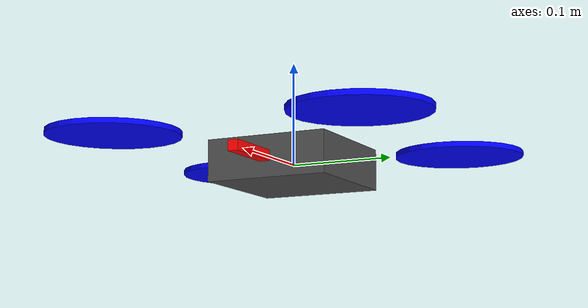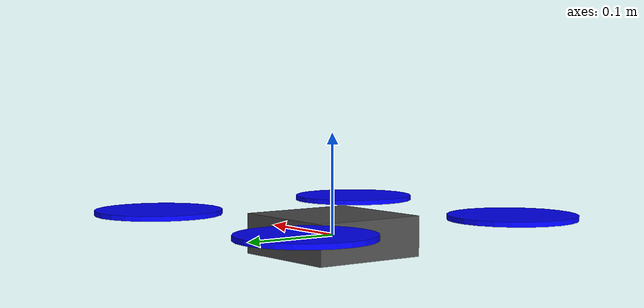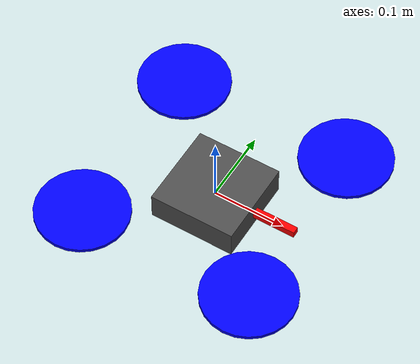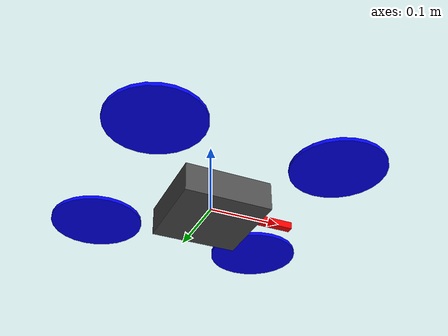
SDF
<?xml version="1.0"?>
<sdf version="1.9">
  <model name="quadrotor">
    <pose>0 0 0 0 0 0</pose>
    <self_collide>false</self_collide>
    <static>false</static>

    <!-- BASE LINK: Main body (frame + battery + electronics)         -->
    <!-- Mass: 1.0 kg (SIM007)                                       -->
    <!-- Inertia: Ixx=Iyy=0.0049, Izz=0.0069 kg*m^2                 -->
    <link name="base_link">
      <pose>0 0 0 0 0 0</pose>

      <inertial>
        <mass>1.0</mass>
        <inertia>
          <ixx>0.0049</ixx>
          <iyy>0.0049</iyy>
          <izz>0.0069</izz>
          <ixy>0</ixy>
          <ixz>0</ixz>
          <iyz>0</iyz>
        </inertia>
      </inertial>

      <collision name="body_collision">
        <geometry>
          <box><size>0.12 0.12 0.04</size></box>
        </geometry>
      </collision>

      <visual name="body_visual">
        <geometry>
          <box><size>0.12 0.12 0.04</size></box>
        </geometry>
        <material>
          <ambient>0.2 0.2 0.2 1</ambient>
          <diffuse>0.3 0.3 0.3 1</diffuse>
        </material>
      </visual>

      <!-- Front arm visual (X+ direction indicator) -->
      <visual name="arm_front_visual">
        <pose>0.06 0 0 0 0 0</pose>
        <geometry>
          <box><size>0.12 0.01 0.01</size></box>
        </geometry>
        <material>
          <ambient>0.8 0.0 0.0 1</ambient>
          <diffuse>1.0 0.0 0.0 1</diffuse>
        </material>
      </visual>

      <!-- IMU SENSOR: MPU-6050 noise model (SIM009/10) -->
      <sensor name="imu_sensor" type="imu">
        <always_on>true</always_on>
        <update_rate>250</update_rate>
        <visualize>false</visualize>
        <topic>imu</topic>
        <imu>
          <angular_velocity>
            <x>
              <noise type="gaussian">
                <mean>0</mean>
                <stddev>0.00138</stddev>
                <bias_mean>0</bias_mean>
                <bias_stddev>0.0003</bias_stddev>
              </noise>
            </x>
            <y>
              <noise type="gaussian">
                <mean>0</mean>
                <stddev>0.00138</stddev>
                <bias_mean>0</bias_mean>
                <bias_stddev>0.0003</bias_stddev>
              </noise>
            </y>
            <z>
              <noise type="gaussian">
                <mean>0</mean>
                <stddev>0.00138</stddev>
                <bias_mean>0</bias_mean>
                <bias_stddev>0.0003</bias_stddev>
              </noise>
            </z>
          </angular_velocity>
          <linear_acceleration>
            <x>
              <noise type="gaussian">
                <mean>0</mean>
                <stddev>0.062</stddev>
                <bias_mean>0</bias_mean>
                <bias_stddev>0.001</bias_stddev>
              </noise>
            </x>
            <y>
              <noise type="gaussian">
                <mean>0</mean>
                <stddev>0.062</stddev>
                <bias_mean>0</bias_mean>
                <bias_stddev>0.001</bias_stddev>
              </noise>
            </y>
            <z>
              <noise type="gaussian">
                <mean>0</mean>
                <stddev>0.062</stddev>
                <bias_mean>0</bias_mean>
                <bias_stddev>0.001</bias_stddev>
              </noise>
            </z>
          </linear_acceleration>
        </imu>
      </sensor>

      <!-- AIR PRESSURE SENSOR (barometer) -->
      <sensor name="air_pressure_sensor" type="air_pressure">
        <always_on>true</always_on>
        <update_rate>50</update_rate>
        <visualize>false</visualize>
        <topic>air_pressure</topic>
        <air_pressure>
          <reference_altitude>0</reference_altitude>
          <pressure>
            <noise type="gaussian">
              <mean>0</mean>
              <stddev>0.25</stddev>
            </noise>
          </pressure>
        </air_pressure>
      </sensor>
    </link>

    <!-- ROTOR 0: Front-Right, CCW                                    -->
    <!-- Position: (+0.1237, -0.1237, +0.02) m                       -->
    <link name="rotor_0">
      <pose>0.1237 -0.1237 0.02 0 0 0</pose>
      <inertial>
        <mass>0.005</mass>
        <inertia>
          <ixx>9.75e-7</ixx>
          <iyy>9.75e-7</iyy>
          <izz>1.95e-6</izz>
          <ixy>0</ixy><ixz>0</ixz><iyz>0</iyz>
        </inertia>
      </inertial>
      <collision name="rotor_0_collision">
        <geometry>
          <cylinder><radius>0.0635</radius><length>0.005</length></cylinder>
        </geometry>
      </collision>
      <visual name="rotor_0_visual">
        <geometry>
          <cylinder><radius>0.0635</radius><length>0.005</length></cylinder>
        </geometry>
        <material>
          <ambient>0.0 0.0 0.8 1</ambient>
          <diffuse>0.0 0.0 1.0 1</diffuse>
        </material>
      </visual>
    </link>

    <joint name="rotor_0_joint" type="revolute">
      <parent>base_link</parent>
      <child>rotor_0</child>
      <axis>
        <xyz>0 0 1</xyz>
        <limit>
          <lower>-1e16</lower>
          <upper>1e16</upper>
        </limit>
      </axis>
    </joint>

    <!-- ROTOR 1: Front-Left, CW                                     -->
    <!-- Position: (+0.1237, +0.1237, +0.02) m                       -->
    <link name="rotor_1">
      <pose>0.1237 0.1237 0.02 0 0 0</pose>
      <inertial>
        <mass>0.005</mass>
        <inertia>
          <ixx>9.75e-7</ixx>
          <iyy>9.75e-7</iyy>
          <izz>1.95e-6</izz>
          <ixy>0</ixy><ixz>0</ixz><iyz>0</iyz>
        </inertia>
      </inertial>
      <collision name="rotor_1_collision">
        <geometry>
          <cylinder><radius>0.0635</radius><length>0.005</length></cylinder>
        </geometry>
      </collision>
      <visual name="rotor_1_visual">
        <geometry>
          <cylinder><radius>0.0635</radius><length>0.005</length></cylinder>
        </geometry>
        <material>
          <ambient>0.0 0.0 0.8 1</ambient>
          <diffuse>0.0 0.0 1.0 1</diffuse>
        </material>
      </visual>
    </link>

    <joint name="rotor_1_joint" type="revolute">
      <parent>base_link</parent>
      <child>rotor_1</child>
      <axis>
        <xyz>0 0 1</xyz>
        <limit>
          <lower>-1e16</lower>
          <upper>1e16</upper>
        </limit>
      </axis>
    </joint>

    <!-- ROTOR 2: Rear-Left, CCW                                     -->
    <!-- Position: (-0.1237, +0.1237, +0.02) m                       -->
    <link name="rotor_2">
      <pose>-0.1237 0.1237 0.02 0 0 0</pose>
      <inertial>
        <mass>0.005</mass>
        <inertia>
          <ixx>9.75e-7</ixx>
          <iyy>9.75e-7</iyy>
          <izz>1.95e-6</izz>
          <ixy>0</ixy><ixz>0</ixz><iyz>0</iyz>
        </inertia>
      </inertial>
      <collision name="rotor_2_collision">
        <geometry>
          <cylinder><radius>0.0635</radius><length>0.005</length></cylinder>
        </geometry>
      </collision>
      <visual name="rotor_2_visual">
        <geometry>
          <cylinder><radius>0.0635</radius><length>0.005</length></cylinder>
        </geometry>
        <material>
          <ambient>0.0 0.0 0.8 1</ambient>
          <diffuse>0.0 0.0 1.0 1</diffuse>
        </material>
      </visual>
    </link>

    <joint name="rotor_2_joint" type="revolute">
      <parent>base_link</parent>
      <child>rotor_2</child>
      <axis>
        <xyz>0 0 1</xyz>
        <limit>
          <lower>-1e16</lower>
          <upper>1e16</upper>
        </limit>
      </axis>
    </joint>

    <!-- ROTOR 3: Rear-Right, CW                                     -->
    <!-- Position: (-0.1237, -0.1237, +0.02) m                       -->
    <link name="rotor_3">
      <pose>-0.1237 -0.1237 0.02 0 0 0</pose>
      <inertial>
        <mass>0.005</mass>
        <inertia>
          <ixx>9.75e-7</ixx>
          <iyy>9.75e-7</iyy>
          <izz>1.95e-6</izz>
          <ixy>0</ixy><ixz>0</ixz><iyz>0</iyz>
        </inertia>
      </inertial>
      <collision name="rotor_3_collision">
        <geometry>
          <cylinder><radius>0.0635</radius><length>0.005</length></cylinder>
        </geometry>
      </collision>
      <visual name="rotor_3_visual">
        <geometry>
          <cylinder><radius>0.0635</radius><length>0.005</length></cylinder>
        </geometry>
        <material>
          <ambient>0.0 0.0 0.8 1</ambient>
          <diffuse>0.0 0.0 1.0 1</diffuse>
        </material>
      </visual>
    </link>

    <joint name="rotor_3_joint" type="revolute">
      <parent>base_link</parent>
      <child>rotor_3</child>
      <axis>
        <xyz>0 0 1</xyz>
        <limit>
          <lower>-1e16</lower>
          <upper>1e16</upper>
        </limit>
      </axis>
    </joint>

    <!-- MULTICOPTER MOTOR MODEL PLUGINS (one per rotor)              -->
    <!-- SIM006: time constant 62.5 ms (within 50-100 ms range)      -->

    <plugin filename="gz-sim-multicopter-motor-model-system"
            name="gz::sim::systems::MulticopterMotorModel">
      <robotNamespace>quadrotor</robotNamespace>
      <jointName>rotor_0_joint</jointName>
      <linkName>rotor_0</linkName>
      <turningDirection>ccw</turningDirection>
      <timeConstantUp>0.0625</timeConstantUp>
      <timeConstantDown>0.025</timeConstantDown>
      <maxRotVelocity>838.0</maxRotVelocity>
      <motorConstant>8.55e-06</motorConstant>
      <momentConstant>0.016</momentConstant>
      <commandSubTopic>command/motor_speed</commandSubTopic>
      <motorNumber>0</motorNumber>
      <rotorDragCoefficient>8.06e-05</rotorDragCoefficient>
      <rollingMomentCoefficient>1e-06</rollingMomentCoefficient>
      <motorSpeedPubTopic>motor_speed/0</motorSpeedPubTopic>
      <rotorVelocitySlowdownSim>10</rotorVelocitySlowdownSim>
      <motorType>velocity</motorType>
    </plugin>

    <plugin filename="gz-sim-multicopter-motor-model-system"
            name="gz::sim::systems::MulticopterMotorModel">
      <robotNamespace>quadrotor</robotNamespace>
      <jointName>rotor_1_joint</jointName>
      <linkName>rotor_1</linkName>
      <turningDirection>cw</turningDirection>
      <timeConstantUp>0.0625</timeConstantUp>
      <timeConstantDown>0.025</timeConstantDown>
      <maxRotVelocity>838.0</maxRotVelocity>
      <motorConstant>8.55e-06</motorConstant>
      <momentConstant>0.016</momentConstant>
      <commandSubTopic>command/motor_speed</commandSubTopic>
      <motorNumber>1</motorNumber>
      <rotorDragCoefficient>8.06e-05</rotorDragCoefficient>
      <rollingMomentCoefficient>1e-06</rollingMomentCoefficient>
      <motorSpeedPubTopic>motor_speed/1</motorSpeedPubTopic>
      <rotorVelocitySlowdownSim>10</rotorVelocitySlowdownSim>
      <motorType>velocity</motorType>
    </plugin>

    <plugin filename="gz-sim-multicopter-motor-model-system"
            name="gz::sim::systems::MulticopterMotorModel">
      <robotNamespace>quadrotor</robotNamespace>
      <jointName>rotor_2_joint</jointName>
      <linkName>rotor_2</linkName>
      <turningDirection>ccw</turningDirection>
      <timeConstantUp>0.0625</timeConstantUp>
      <timeConstantDown>0.025</timeConstantDown>
      <maxRotVelocity>838.0</maxRotVelocity>
      <motorConstant>8.55e-06</motorConstant>
      <momentConstant>0.016</momentConstant>
      <commandSubTopic>command/motor_speed</commandSubTopic>
      <motorNumber>2</motorNumber>
      <rotorDragCoefficient>8.06e-05</rotorDragCoefficient>
      <rollingMomentCoefficient>1e-06</rollingMomentCoefficient>
      <motorSpeedPubTopic>motor_speed/2</motorSpeedPubTopic>
      <rotorVelocitySlowdownSim>10</rotorVelocitySlowdownSim>
      <motorType>velocity</motorType>
    </plugin>

    <plugin filename="gz-sim-multicopter-motor-model-system"
            name="gz::sim::systems::MulticopterMotorModel">
      <robotNamespace>quadrotor</robotNamespace>
      <jointName>rotor_3_joint</jointName>
      <linkName>rotor_3</linkName>
      <turningDirection>cw</turningDirection>
      <timeConstantUp>0.0625</timeConstantUp>
      <timeConstantDown>0.025</timeConstantDown>
      <maxRotVelocity>838.0</maxRotVelocity>
      <motorConstant>8.55e-06</motorConstant>
      <momentConstant>0.016</momentConstant>
      <commandSubTopic>command/motor_speed</commandSubTopic>
      <motorNumber>3</motorNumber>
      <rotorDragCoefficient>8.06e-05</rotorDragCoefficient>
      <rollingMomentCoefficient>1e-06</rollingMomentCoefficient>
      <motorSpeedPubTopic>motor_speed/3</motorSpeedPubTopic>
      <rotorVelocitySlowdownSim>10</rotorVelocitySlowdownSim>
      <motorType>velocity</motorType>
    </plugin>

    <!-- ODOMETRY PUBLISHER: ground truth pose at 100 Hz              -->
    <plugin filename="gz-sim-odometry-publisher-system"
            name="gz::sim::systems::OdometryPublisher">
      <dimensions>3</dimensions>
      <odom_publish_frequency>100</odom_publish_frequency>
    </plugin>

  </model>
</sdf>
